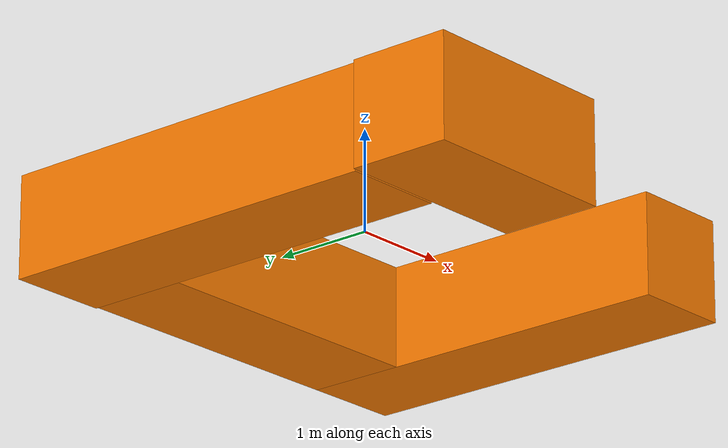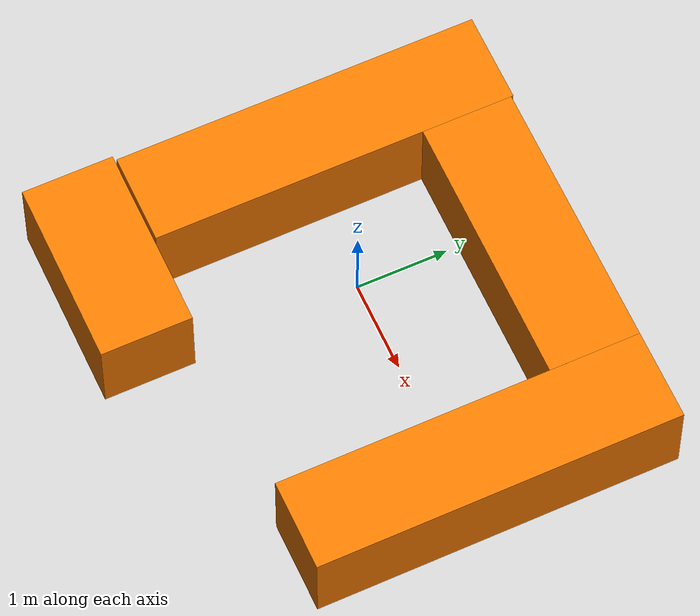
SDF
<?xml version='1.0'?>
<sdf version='1.6'>
  <model name='obstacle'>
    <link name='link_1'>
      <inertial>
        <mass>7.09668</mass>
        <inertia>
          <ixx>30.3753</ixx>
          <ixy>0</ixy>
          <ixz>0</ixz>
          <iyy>1.18278</iyy>
          <iyz>0</iyz>
          <izz>30.3753</izz>
        </inertia>
        <pose frame=''>0 0 0 0 -0 0</pose>
      </inertial>
      <pose frame=''>-1.61661 0.268029 0 0 -0 0</pose>
      <gravity>1</gravity>
      <self_collide>0</self_collide>
      <kinematic>0</kinematic>
      <enable_wind>0</enable_wind>
      <visual name='visual'>
        <pose frame=''>0 0 0 0 -0 0</pose>
        <geometry>
          <box>
            <size>1 4 1</size>
          </box>
        </geometry>
        <material>
          <lighting>1</lighting>
          <script>
            <uri>file://media/materials/scripts/gazebo.material</uri>
            <name>Gazebo/Grey</name>
          </script>
          <shader type='vertex'>
            <normal_map>__default__</normal_map>
          </shader>
          <ambient>0.961 0.475 0 1</ambient>
          <diffuse>0.7 0.7 0.7 1</diffuse>
          <specular>0.01 0.01 0.01 1</specular>
          <emissive>0 0 0 1</emissive>
        </material>
        <transparency>0</transparency>
        <cast_shadows>1</cast_shadows>
      </visual>
      <collision name='collision'>
        <laser_retro>0</laser_retro>
        <max_contacts>10</max_contacts>
        <pose frame=''>0 0 0 0 -0 0</pose>
        <geometry>
          <box>
            <size>1 4 1</size>
          </box>
        </geometry>
        <surface>
          <friction>
            <ode>
              <mu>1</mu>
              <mu2>1</mu2>
              <fdir1>0 0 0</fdir1>
              <slip1>0</slip1>
              <slip2>0</slip2>
            </ode>
            <torsional>
              <coefficient>1</coefficient>
              <patch_radius>0</patch_radius>
              <surface_radius>0</surface_radius>
              <use_patch_radius>1</use_patch_radius>
              <ode>
                <slip>0</slip>
              </ode>
            </torsional>
          </friction>
          <bounce>
            <restitution_coefficient>0</restitution_coefficient>
            <threshold>1e+06</threshold>
          </bounce>
          <contact>
            <collide_without_contact>0</collide_without_contact>
            <collide_without_contact_bitmask>1</collide_without_contact_bitmask>
            <collide_bitmask>1</collide_bitmask>
            <ode>
              <soft_cfm>0</soft_cfm>
              <soft_erp>0.2</soft_erp>
              <kp>1e+13</kp>
              <kd>1</kd>
              <max_vel>0.01</max_vel>
              <min_depth>0</min_depth>
            </ode>
            <bullet>
              <split_impulse>1</split_impulse>
              <split_impulse_penetration_threshold>-0.01</split_impulse_penetration_threshold>
              <soft_cfm>0</soft_cfm>
              <soft_erp>0.2</soft_erp>
              <kp>1e+13</kp>
              <kd>1</kd>
            </bullet>
          </contact>
        </surface>
      </collision>
    </link>
    <link name='link_1_clone'>
      <inertial>
        <mass>1</mass>
        <inertia>
          <ixx>0.166667</ixx>
          <ixy>0</ixy>
          <ixz>0</ixz>
          <iyy>0.166667</iyy>
          <iyz>0</iyz>
          <izz>0.166667</izz>
        </inertia>
        <pose frame=''>0 0 0 0 -0 0</pose>
      </inertial>
      <pose frame=''>0.383395 1.74399 0 0 -0 0</pose>
      <gravity>1</gravity>
      <self_collide>0</self_collide>
      <kinematic>0</kinematic>
      <enable_wind>0</enable_wind>
      <visual name='visual'>
        <pose frame=''>0 0 0 0 -0 0</pose>
        <geometry>
          <box>
            <size>3 1 1</size>
          </box>
        </geometry>
        <material>
          <lighting>1</lighting>
          <script>
            <uri>file://media/materials/scripts/gazebo.material</uri>
            <name>Gazebo/Grey</name>
          </script>
          <shader type='vertex'>
            <normal_map>__default__</normal_map>
          </shader>
          <ambient>0.961 0.475 0 1</ambient>
          <diffuse>0.7 0.7 0.7 1</diffuse>
          <specular>0.01 0.01 0.01 1</specular>
          <emissive>0 0 0 1</emissive>
        </material>
        <transparency>0</transparency>
        <cast_shadows>1</cast_shadows>
      </visual>
      <collision name='collision'>
        <laser_retro>0</laser_retro>
        <max_contacts>10</max_contacts>
        <pose frame=''>0 0 0 0 -0 0</pose>
        <geometry>
          <box>
            <size>3 1 1</size>
          </box>
        </geometry>
        <surface>
          <friction>
            <ode>
              <mu>1</mu>
              <mu2>1</mu2>
              <fdir1>0 0 0</fdir1>
              <slip1>0</slip1>
              <slip2>0</slip2>
            </ode>
            <torsional>
              <coefficient>1</coefficient>
              <patch_radius>0</patch_radius>
              <surface_radius>0</surface_radius>
              <use_patch_radius>1</use_patch_radius>
              <ode>
                <slip>0</slip>
              </ode>
            </torsional>
          </friction>
          <bounce>
            <restitution_coefficient>0</restitution_coefficient>
            <threshold>1e+06</threshold>
          </bounce>
          <contact>
            <collide_without_contact>0</collide_without_contact>
            <collide_without_contact_bitmask>1</collide_without_contact_bitmask>
            <collide_bitmask>1</collide_bitmask>
            <ode>
              <soft_cfm>0</soft_cfm>
              <soft_erp>0.2</soft_erp>
              <kp>1e+13</kp>
              <kd>1</kd>
              <max_vel>0.01</max_vel>
              <min_depth>0</min_depth>
            </ode>
            <bullet>
              <split_impulse>1</split_impulse>
              <split_impulse_penetration_threshold>-0.01</split_impulse_penetration_threshold>
              <soft_cfm>0</soft_cfm>
              <soft_erp>0.2</soft_erp>
              <kp>1e+13</kp>
              <kd>1</kd>
            </bullet>
          </contact>
        </surface>
      </collision>
    </link>
    <link name='link_1_clone_0'>
      <inertial>
        <mass>7.09668</mass>
        <inertia>
          <ixx>30.3753</ixx>
          <ixy>0</ixy>
          <ixz>0</ixz>
          <iyy>1.18278</iyy>
          <iyz>0</iyz>
          <izz>30.3753</izz>
        </inertia>
        <pose frame=''>0 0 0 0 -0 0</pose>
      </inertial>
      <pose frame=''>2.3834 0.243991 0 0 -0 0</pose>
      <gravity>1</gravity>
      <self_collide>0</self_collide>
      <kinematic>0</kinematic>
      <enable_wind>0</enable_wind>
      <visual name='visual'>
        <pose frame=''>0 0 0 0 -0 0</pose>
        <geometry>
          <box>
            <size>1 4 1</size>
          </box>
        </geometry>
        <material>
          <lighting>1</lighting>
          <script>
            <uri>file://media/materials/scripts/gazebo.material</uri>
            <name>Gazebo/Grey</name>
          </script>
          <shader type='vertex'>
            <normal_map>__default__</normal_map>
          </shader>
          <ambient>0.961 0.475 0 1</ambient>
          <diffuse>0.7 0.7 0.7 1</diffuse>
          <specular>0.01 0.01 0.01 1</specular>
          <emissive>0 0 0 1</emissive>
        </material>
        <transparency>0</transparency>
        <cast_shadows>1</cast_shadows>
      </visual>
      <collision name='collision'>
        <laser_retro>0</laser_retro>
        <max_contacts>10</max_contacts>
        <pose frame=''>0 0 0 0 -0 0</pose>
        <geometry>
          <box>
            <size>1 4 1</size>
          </box>
        </geometry>
        <surface>
          <friction>
            <ode>
              <mu>1</mu>
              <mu2>1</mu2>
              <fdir1>0 0 0</fdir1>
              <slip1>0</slip1>
              <slip2>0</slip2>
            </ode>
            <torsional>
              <coefficient>1</coefficient>
              <patch_radius>0</patch_radius>
              <surface_radius>0</surface_radius>
              <use_patch_radius>1</use_patch_radius>
              <ode>
                <slip>0</slip>
              </ode>
            </torsional>
          </friction>
          <bounce>
            <restitution_coefficient>0</restitution_coefficient>
            <threshold>1e+06</threshold>
          </bounce>
          <contact>
            <collide_without_contact>0</collide_without_contact>
            <collide_without_contact_bitmask>1</collide_without_contact_bitmask>
            <collide_bitmask>1</collide_bitmask>
            <ode>
              <soft_cfm>0</soft_cfm>
              <soft_erp>0.2</soft_erp>
              <kp>1e+13</kp>
              <kd>1</kd>
              <max_vel>0.01</max_vel>
              <min_depth>0</min_depth>
            </ode>
            <bullet>
              <split_impulse>1</split_impulse>
              <split_impulse_penetration_threshold>-0.01</split_impulse_penetration_threshold>
              <soft_cfm>0</soft_cfm>
              <soft_erp>0.2</soft_erp>
              <kp>1e+13</kp>
              <kd>1</kd>
            </bullet>
          </contact>
        </surface>
      </collision>
    </link>
    <link name='link_1_clone_clone'>
      <inertial>
        <mass>0.677697</mass>
        <inertia>
          <ixx>0.11295</ixx>
          <ixy>0</ixy>
          <ixz>0</ixz>
          <iyy>0.28991</iyy>
          <iyz>0</iyz>
          <izz>0.28991</izz>
        </inertia>
        <pose frame=''>0 0 0 0 -0 0</pose>
      </inertial>
      <pose frame=''>-1.15019 -2.25601 0 0 -0 0</pose>
      <gravity>1</gravity>
      <self_collide>0</self_collide>
      <kinematic>0</kinematic>
      <enable_wind>0</enable_wind>
      <visual name='visual'>
        <pose frame=''>0 0 0 0 -0 0</pose>
        <geometry>
          <box>
            <size>2.03309 1 1</size>
          </box>
        </geometry>
        <material>
          <lighting>1</lighting>
          <script>
            <uri>file://media/materials/scripts/gazebo.material</uri>
            <name>Gazebo/Grey</name>
          </script>
          <shader type='vertex'>
            <normal_map>__default__</normal_map>
          </shader>
          <ambient>0.961 0.475 0 1</ambient>
          <diffuse>0.7 0.7 0.7 1</diffuse>
          <specular>0.01 0.01 0.01 1</specular>
          <emissive>0 0 0 1</emissive>
        </material>
        <transparency>0</transparency>
        <cast_shadows>1</cast_shadows>
      </visual>
      <collision name='collision'>
        <laser_retro>0</laser_retro>
        <max_contacts>10</max_contacts>
        <pose frame=''>0 0 0 0 -0 0</pose>
        <geometry>
          <box>
            <size>2.03309 1 1</size>
          </box>
        </geometry>
        <surface>
          <friction>
            <ode>
              <mu>1</mu>
              <mu2>1</mu2>
              <fdir1>0 0 0</fdir1>
              <slip1>0</slip1>
              <slip2>0</slip2>
            </ode>
            <torsional>
              <coefficient>1</coefficient>
              <patch_radius>0</patch_radius>
              <surface_radius>0</surface_radius>
              <use_patch_radius>1</use_patch_radius>
              <ode>
                <slip>0</slip>
              </ode>
            </torsional>
          </friction>
          <bounce>
            <restitution_coefficient>0</restitution_coefficient>
            <threshold>1e+06</threshold>
          </bounce>
          <contact>
            <collide_without_contact>0</collide_without_contact>
            <collide_without_contact_bitmask>1</collide_without_contact_bitmask>
            <collide_bitmask>1</collide_bitmask>
            <ode>
              <soft_cfm>0</soft_cfm>
              <soft_erp>0.2</soft_erp>
              <kp>1e+13</kp>
              <kd>1</kd>
              <max_vel>0.01</max_vel>
              <min_depth>0</min_depth>
            </ode>
            <bullet>
              <split_impulse>1</split_impulse>
              <split_impulse_penetration_threshold>-0.01</split_impulse_penetration_threshold>
              <soft_cfm>0</soft_cfm>
              <soft_erp>0.2</soft_erp>
              <kp>1e+13</kp>
              <kd>1</kd>
            </bullet>
          </contact>
        </surface>
      </collision>
    </link>
    <static>0</static>
    <allow_auto_disable>1</allow_auto_disable>
  </model>
</sdf>
